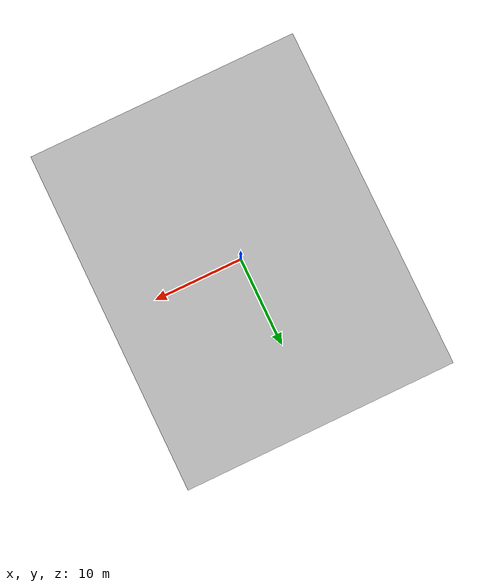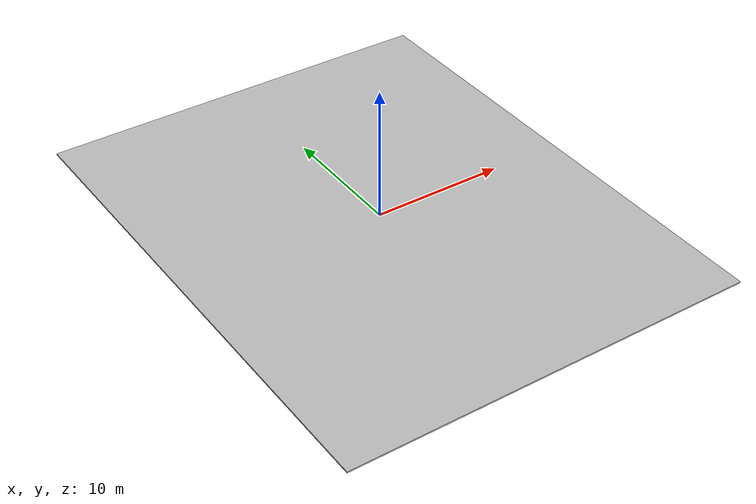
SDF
<?xml version='1.0'?>
<sdf version='1.7'>
  <model name='prius_road'>
    <link name='link'>
      <inertial>
        <mass>134.227</mass>
        <inertia>
          <ixx>16937.8</ixx>
          <ixy>0</ixy>
          <ixz>0</ixz>
          <iyy>10641.2</iyy>
          <iyz>0</iyz>
          <izz>27578.8</izz>
        </inertia>
        <pose>0 0 0 0 -0 0</pose>
      </inertial>
      <self_collide>0</self_collide>
      <enable_wind>0</enable_wind>
      <kinematic>0</kinematic>
      <pose>0 0 0 0 -0 0</pose>
      <visual name='visual'>
        <geometry>
          <box>
            <size>30.8435 38.9134 0.111229</size>
          </box>
        </geometry>
        <material>
          <script>
            <uri>/home/utk/ros2_ws/src/my_prius/urdf/prius_road/materials/scripts</uri>
            <uri>/home/utk/ros2_ws/src/my_prius/urdf/prius_road/materials/textures</uri>
            <name>my_road/Diffuse</name>
          </script>
          <shader type='pixel'/>
        </material>
        <pose>0 0 0 0 -0 0</pose>
        <transparency>0</transparency>
        <cast_shadows>1</cast_shadows>
      </visual>
      <collision name='collision'>
        <laser_retro>0</laser_retro>
        <max_contacts>10</max_contacts>
        <pose>0 0 0 0 -0 0</pose>
        <geometry>
          <box>
            <size>30.8435 38.9134 0.111229</size>
          </box>
        </geometry>
        <surface>
          <friction>
            <ode>
              <mu>1</mu>
              <mu2>1</mu2>
              <fdir1>0 0 0</fdir1>
              <slip1>0</slip1>
              <slip2>0</slip2>
            </ode>
            <torsional>
              <coefficient>1</coefficient>
              <patch_radius>0</patch_radius>
              <surface_radius>0</surface_radius>
              <use_patch_radius>1</use_patch_radius>
              <ode>
                <slip>0</slip>
              </ode>
            </torsional>
          </friction>
          <bounce>
            <restitution_coefficient>0</restitution_coefficient>
            <threshold>1e+06</threshold>
          </bounce>
          <contact>
            <collide_without_contact>0</collide_without_contact>
            <collide_without_contact_bitmask>1</collide_without_contact_bitmask>
            <collide_bitmask>1</collide_bitmask>
            <ode>
              <soft_cfm>0</soft_cfm>
              <soft_erp>0.2</soft_erp>
              <kp>1e+13</kp>
              <kd>1</kd>
              <max_vel>0.01</max_vel>
              <min_depth>0</min_depth>
            </ode>
            <bullet>
              <split_impulse>1</split_impulse>
              <split_impulse_penetration_threshold>-0.01</split_impulse_penetration_threshold>
              <soft_cfm>0</soft_cfm>
              <soft_erp>0.2</soft_erp>
              <kp>1e+13</kp>
              <kd>1</kd>
            </bullet>
          </contact>
        </surface>
      </collision>
    </link>
    <static>0</static>
    <allow_auto_disable>1</allow_auto_disable>
  </model>
</sdf>
